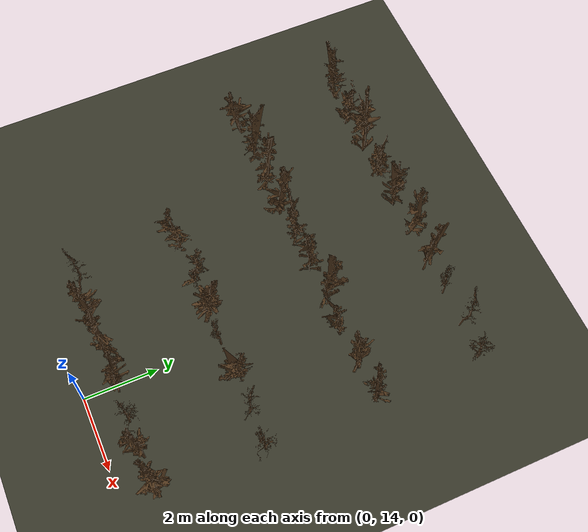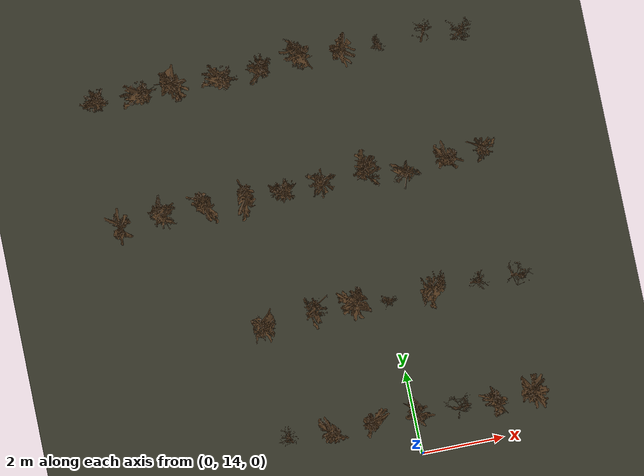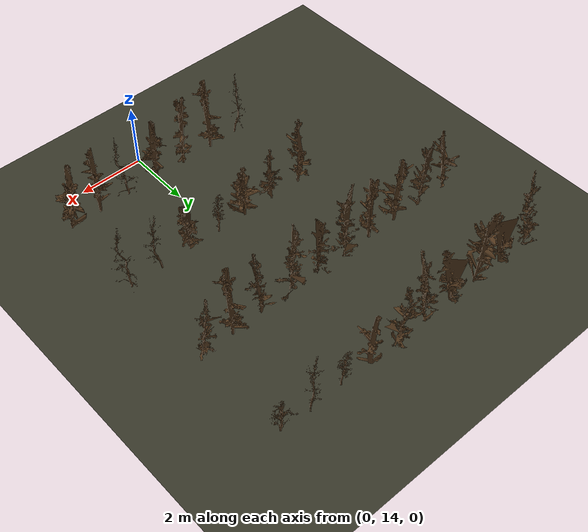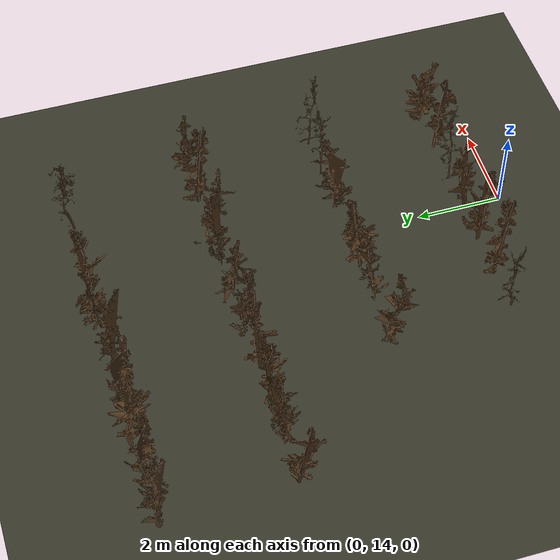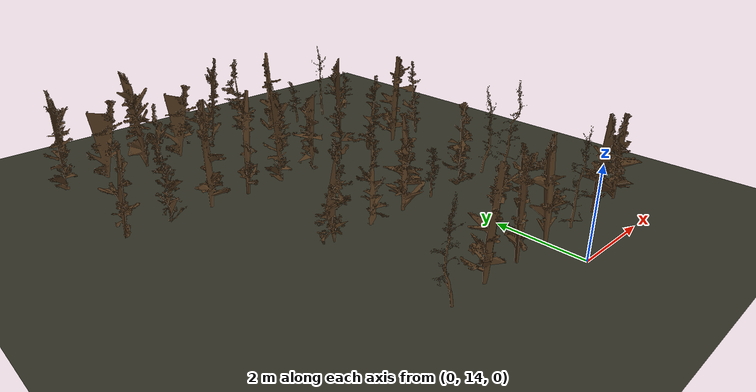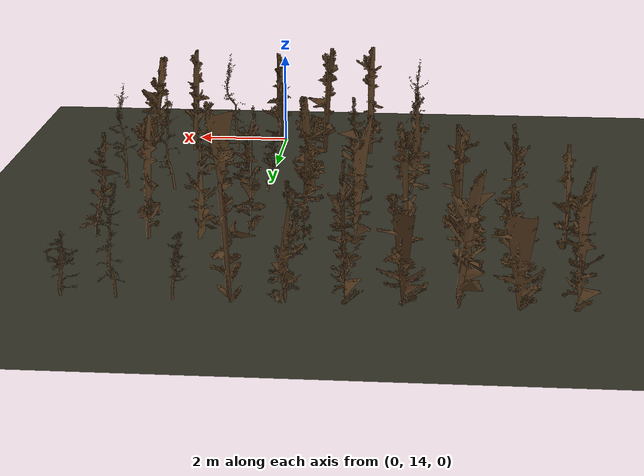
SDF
<sdf version="1.9">
 <world name="orchard_dormant_world">
  <model name="ground_plane">
   <static>true</static>
   <link name="link">
    <collision name="collision">
     <geometry><plane><normal>0 0 1</normal><size>500 500</size></plane></geometry>
    </collision>
    <visual name="visual">
     <geometry><plane><normal>0 0 1</normal><size>500 500</size></plane></geometry>
     <material><ambient>0.2 0.2 0.15 1</ambient><diffuse>0.2 0.2 0.15 1</diffuse></material>
    </visual>
   </link>
  </model>
  <model name="tree28">
   <static>true</static>
   <pose>3.000 23.830 -0.1 0 0 1.479</pose>
   <link name="link">
    <collision name="collision">
     <geometry>
      <mesh>
       <uri>file:///home/administrator/ros2/orchard_navigation_rl_ws/src/orchard_worlds/models/orchard_model/tree14_collision.stl</uri>
      </mesh>
     </geometry>
    </collision>
    <visual name="visual">
     <geometry>
      <mesh>
       <uri>file:///home/administrator/ros2/orchard_navigation_rl_ws/src/orchard_worlds/models/orchard_model/tree14.stl</uri>
      </mesh>
     </geometry>
     <material><ambient>0.3 0.2 0.1 1</ambient><diffuse>0.3 0.2 0.1 1</diffuse></material>
    </visual>
   </link>
  </model>
  <model name="tree29">
   <static>true</static>
   <pose>2.000 23.830 -0.1 0 0 5.065</pose>
   <link name="link">
    <collision name="collision">
     <geometry>
      <mesh>
       <uri>file:///home/administrator/ros2/orchard_navigation_rl_ws/src/orchard_worlds/models/orchard_model/tree16_collision.stl</uri>
      </mesh>
     </geometry>
    </collision>
    <visual name="visual">
     <geometry>
      <mesh>
       <uri>file:///home/administrator/ros2/orchard_navigation_rl_ws/src/orchard_worlds/models/orchard_model/tree16.stl</uri>
      </mesh>
     </geometry>
     <material><ambient>0.3 0.2 0.1 1</ambient><diffuse>0.3 0.2 0.1 1</diffuse></material>
    </visual>
   </link>
  </model>
  <model name="tree30">
   <static>true</static>
   <pose>1.000 23.830 -0.1 0 0 5.503</pose>
   <link name="link">
    <collision name="collision">
     <geometry>
      <mesh>
       <uri>file:///home/administrator/ros2/orchard_navigation_rl_ws/src/orchard_worlds/models/orchard_model/tree4_collision.stl</uri>
      </mesh>
     </geometry>
    </collision>
    <visual name="visual">
     <geometry>
      <mesh>
       <uri>file:///home/administrator/ros2/orchard_navigation_rl_ws/src/orchard_worlds/models/orchard_model/tree4.stl</uri>
      </mesh>
     </geometry>
     <material><ambient>0.3 0.2 0.1 1</ambient><diffuse>0.3 0.2 0.1 1</diffuse></material>
    </visual>
   </link>
  </model>
  <model name="tree31">
   <static>true</static>
   <pose>0.000 23.830 -0.1 0 0 3.590</pose>
   <link name="link">
    <collision name="collision">
     <geometry>
      <mesh>
       <uri>file:///home/administrator/ros2/orchard_navigation_rl_ws/src/orchard_worlds/models/orchard_model/tree13_collision.stl</uri>
      </mesh>
     </geometry>
    </collision>
    <visual name="visual">
     <geometry>
      <mesh>
       <uri>file:///home/administrator/ros2/orchard_navigation_rl_ws/src/orchard_worlds/models/orchard_model/tree13.stl</uri>
      </mesh>
     </geometry>
     <material><ambient>0.3 0.2 0.1 1</ambient><diffuse>0.3 0.2 0.1 1</diffuse></material>
    </visual>
   </link>
  </model>
  <model name="tree32">
   <static>true</static>
   <pose>-1.000 23.830 -0.1 0 0 4.396</pose>
   <link name="link">
    <collision name="collision">
     <geometry>
      <mesh>
       <uri>file:///home/administrator/ros2/orchard_navigation_rl_ws/src/orchard_worlds/models/orchard_model/tree10_collision.stl</uri>
      </mesh>
     </geometry>
    </collision>
    <visual name="visual">
     <geometry>
      <mesh>
       <uri>file:///home/administrator/ros2/orchard_navigation_rl_ws/src/orchard_worlds/models/orchard_model/tree10.stl</uri>
      </mesh>
     </geometry>
     <material><ambient>0.3 0.2 0.1 1</ambient><diffuse>0.3 0.2 0.1 1</diffuse></material>
    </visual>
   </link>
  </model>
  <model name="tree33">
   <static>true</static>
   <pose>-2.000 23.830 -0.1 0 0 0.554</pose>
   <link name="link">
    <collision name="collision">
     <geometry>
      <mesh>
       <uri>file:///home/administrator/ros2/orchard_navigation_rl_ws/src/orchard_worlds/models/orchard_model/tree5_collision.stl</uri>
      </mesh>
     </geometry>
    </collision>
    <visual name="visual">
     <geometry>
      <mesh>
       <uri>file:///home/administrator/ros2/orchard_navigation_rl_ws/src/orchard_worlds/models/orchard_model/tree5.stl</uri>
      </mesh>
     </geometry>
     <material><ambient>0.3 0.2 0.1 1</ambient><diffuse>0.3 0.2 0.1 1</diffuse></material>
    </visual>
   </link>
  </model>
  <model name="tree34">
   <static>true</static>
   <pose>-3.000 23.830 -0.1 0 0 1.792</pose>
   <link name="link">
    <collision name="collision">
     <geometry>
      <mesh>
       <uri>file:///home/administrator/ros2/orchard_navigation_rl_ws/src/orchard_worlds/models/orchard_model/tree11_collision.stl</uri>
      </mesh>
     </geometry>
    </collision>
    <visual name="visual">
     <geometry>
      <mesh>
       <uri>file:///home/administrator/ros2/orchard_navigation_rl_ws/src/orchard_worlds/models/orchard_model/tree11.stl</uri>
      </mesh>
     </geometry>
     <material><ambient>0.3 0.2 0.1 1</ambient><diffuse>0.3 0.2 0.1 1</diffuse></material>
    </visual>
   </link>
  </model>
  <model name="tree35">
   <static>true</static>
   <pose>-4.000 23.830 -0.1 0 0 5.510</pose>
   <link name="link">
    <collision name="collision">
     <geometry>
      <mesh>
       <uri>file:///home/administrator/ros2/orchard_navigation_rl_ws/src/orchard_worlds/models/orchard_model/tree7_collision.stl</uri>
      </mesh>
     </geometry>
    </collision>
    <visual name="visual">
     <geometry>
      <mesh>
       <uri>file:///home/administrator/ros2/orchard_navigation_rl_ws/src/orchard_worlds/models/orchard_model/tree7.stl</uri>
      </mesh>
     </geometry>
     <material><ambient>0.3 0.2 0.1 1</ambient><diffuse>0.3 0.2 0.1 1</diffuse></material>
    </visual>
   </link>
  </model>
  <model name="tree36">
   <static>true</static>
   <pose>-5.000 23.830 -0.1 0 0 2.146</pose>
   <link name="link">
    <collision name="collision">
     <geometry>
      <mesh>
       <uri>file:///home/administrator/ros2/orchard_navigation_rl_ws/src/orchard_worlds/models/orchard_model/tree11_collision.stl</uri>
      </mesh>
     </geometry>
    </collision>
    <visual name="visual">
     <geometry>
      <mesh>
       <uri>file:///home/administrator/ros2/orchard_navigation_rl_ws/src/orchard_worlds/models/orchard_model/tree11.stl</uri>
      </mesh>
     </geometry>
     <material><ambient>0.3 0.2 0.1 1</ambient><diffuse>0.3 0.2 0.1 1</diffuse></material>
    </visual>
   </link>
  </model>
  <model name="tree37">
   <static>true</static>
   <pose>-6.000 23.830 -0.1 0 0 6.051</pose>
   <link name="link">
    <collision name="collision">
     <geometry>
      <mesh>
       <uri>file:///home/administrator/ros2/orchard_navigation_rl_ws/src/orchard_worlds/models/orchard_model/tree5_collision.stl</uri>
      </mesh>
     </geometry>
    </collision>
    <visual name="visual">
     <geometry>
      <mesh>
       <uri>file:///home/administrator/ros2/orchard_navigation_rl_ws/src/orchard_worlds/models/orchard_model/tree5.stl</uri>
      </mesh>
     </geometry>
     <material><ambient>0.3 0.2 0.1 1</ambient><diffuse>0.3 0.2 0.1 1</diffuse></material>
    </visual>
   </link>
  </model>
  <model name="tree65">
   <static>true</static>
   <pose>3.000 20.800 -0.1 0 0 5.099</pose>
   <link name="link">
    <collision name="collision">
     <geometry>
      <mesh>
       <uri>file:///home/administrator/ros2/orchard_navigation_rl_ws/src/orchard_worlds/models/orchard_model/tree2_collision.stl</uri>
      </mesh>
     </geometry>
    </collision>
    <visual name="visual">
     <geometry>
      <mesh>
       <uri>file:///home/administrator/ros2/orchard_navigation_rl_ws/src/orchard_worlds/models/orchard_model/tree2.stl</uri>
      </mesh>
     </geometry>
     <material><ambient>0.3 0.2 0.1 1</ambient><diffuse>0.3 0.2 0.1 1</diffuse></material>
    </visual>
   </link>
  </model>
  <model name="tree66">
   <static>true</static>
   <pose>2.000 20.800 -0.1 0 0 0.554</pose>
   <link name="link">
    <collision name="collision">
     <geometry>
      <mesh>
       <uri>file:///home/administrator/ros2/orchard_navigation_rl_ws/src/orchard_worlds/models/orchard_model/tree6_collision.stl</uri>
      </mesh>
     </geometry>
    </collision>
    <visual name="visual">
     <geometry>
      <mesh>
       <uri>file:///home/administrator/ros2/orchard_navigation_rl_ws/src/orchard_worlds/models/orchard_model/tree6.stl</uri>
      </mesh>
     </geometry>
     <material><ambient>0.3 0.2 0.1 1</ambient><diffuse>0.3 0.2 0.1 1</diffuse></material>
    </visual>
   </link>
  </model>
  <model name="tree67">
   <static>true</static>
   <pose>1.000 20.800 -0.1 0 0 0.568</pose>
   <link name="link">
    <collision name="collision">
     <geometry>
      <mesh>
       <uri>file:///home/administrator/ros2/orchard_navigation_rl_ws/src/orchard_worlds/models/orchard_model/tree2_collision.stl</uri>
      </mesh>
     </geometry>
    </collision>
    <visual name="visual">
     <geometry>
      <mesh>
       <uri>file:///home/administrator/ros2/orchard_navigation_rl_ws/src/orchard_worlds/models/orchard_model/tree2.stl</uri>
      </mesh>
     </geometry>
     <material><ambient>0.3 0.2 0.1 1</ambient><diffuse>0.3 0.2 0.1 1</diffuse></material>
    </visual>
   </link>
  </model>
  <model name="tree68">
   <static>true</static>
   <pose>0.000 20.800 -0.1 0 0 3.835</pose>
   <link name="link">
    <collision name="collision">
     <geometry>
      <mesh>
       <uri>file:///home/administrator/ros2/orchard_navigation_rl_ws/src/orchard_worlds/models/orchard_model/tree3_collision.stl</uri>
      </mesh>
     </geometry>
    </collision>
    <visual name="visual">
     <geometry>
      <mesh>
       <uri>file:///home/administrator/ros2/orchard_navigation_rl_ws/src/orchard_worlds/models/orchard_model/tree3.stl</uri>
      </mesh>
     </geometry>
     <material><ambient>0.3 0.2 0.1 1</ambient><diffuse>0.3 0.2 0.1 1</diffuse></material>
    </visual>
   </link>
  </model>
  <model name="tree69">
   <static>true</static>
   <pose>-1.000 20.800 -0.1 0 0 5.362</pose>
   <link name="link">
    <collision name="collision">
     <geometry>
      <mesh>
       <uri>file:///home/administrator/ros2/orchard_navigation_rl_ws/src/orchard_worlds/models/orchard_model/tree1_collision.stl</uri>
      </mesh>
     </geometry>
    </collision>
    <visual name="visual">
     <geometry>
      <mesh>
       <uri>file:///home/administrator/ros2/orchard_navigation_rl_ws/src/orchard_worlds/models/orchard_model/tree1.stl</uri>
      </mesh>
     </geometry>
     <material><ambient>0.3 0.2 0.1 1</ambient><diffuse>0.3 0.2 0.1 1</diffuse></material>
    </visual>
   </link>
  </model>
  <model name="tree70">
   <static>true</static>
   <pose>-2.000 20.800 -0.1 0 0 5.466</pose>
   <link name="link">
    <collision name="collision">
     <geometry>
      <mesh>
       <uri>file:///home/administrator/ros2/orchard_navigation_rl_ws/src/orchard_worlds/models/orchard_model/tree5_collision.stl</uri>
      </mesh>
     </geometry>
    </collision>
    <visual name="visual">
     <geometry>
      <mesh>
       <uri>file:///home/administrator/ros2/orchard_navigation_rl_ws/src/orchard_worlds/models/orchard_model/tree5.stl</uri>
      </mesh>
     </geometry>
     <material><ambient>0.3 0.2 0.1 1</ambient><diffuse>0.3 0.2 0.1 1</diffuse></material>
    </visual>
   </link>
  </model>
  <model name="tree71">
   <static>true</static>
   <pose>-3.000 20.800 -0.1 0 0 2.984</pose>
   <link name="link">
    <collision name="collision">
     <geometry>
      <mesh>
       <uri>file:///home/administrator/ros2/orchard_navigation_rl_ws/src/orchard_worlds/models/orchard_model/tree6_collision.stl</uri>
      </mesh>
     </geometry>
    </collision>
    <visual name="visual">
     <geometry>
      <mesh>
       <uri>file:///home/administrator/ros2/orchard_navigation_rl_ws/src/orchard_worlds/models/orchard_model/tree6.stl</uri>
      </mesh>
     </geometry>
     <material><ambient>0.3 0.2 0.1 1</ambient><diffuse>0.3 0.2 0.1 1</diffuse></material>
    </visual>
   </link>
  </model>
  <model name="tree72">
   <static>true</static>
   <pose>-4.000 20.800 -0.1 0 0 3.839</pose>
   <link name="link">
    <collision name="collision">
     <geometry>
      <mesh>
       <uri>file:///home/administrator/ros2/orchard_navigation_rl_ws/src/orchard_worlds/models/orchard_model/tree6_collision.stl</uri>
      </mesh>
     </geometry>
    </collision>
    <visual name="visual">
     <geometry>
      <mesh>
       <uri>file:///home/administrator/ros2/orchard_navigation_rl_ws/src/orchard_worlds/models/orchard_model/tree6.stl</uri>
      </mesh>
     </geometry>
     <material><ambient>0.3 0.2 0.1 1</ambient><diffuse>0.3 0.2 0.1 1</diffuse></material>
    </visual>
   </link>
  </model>
  <model name="tree73">
   <static>true</static>
   <pose>-5.000 20.800 -0.1 0 0 3.483</pose>
   <link name="link">
    <collision name="collision">
     <geometry>
      <mesh>
       <uri>file:///home/administrator/ros2/orchard_navigation_rl_ws/src/orchard_worlds/models/orchard_model/tree5_collision.stl</uri>
      </mesh>
     </geometry>
    </collision>
    <visual name="visual">
     <geometry>
      <mesh>
       <uri>file:///home/administrator/ros2/orchard_navigation_rl_ws/src/orchard_worlds/models/orchard_model/tree5.stl</uri>
      </mesh>
     </geometry>
     <material><ambient>0.3 0.2 0.1 1</ambient><diffuse>0.3 0.2 0.1 1</diffuse></material>
    </visual>
   </link>
  </model>
  <model name="tree74">
   <static>true</static>
   <pose>-6.000 20.800 -0.1 0 0 0.524</pose>
   <link name="link">
    <collision name="collision">
     <geometry>
      <mesh>
       <uri>file:///home/administrator/ros2/orchard_navigation_rl_ws/src/orchard_worlds/models/orchard_model/tree8_collision.stl</uri>
      </mesh>
     </geometry>
    </collision>
    <visual name="visual">
     <geometry>
      <mesh>
       <uri>file:///home/administrator/ros2/orchard_navigation_rl_ws/src/orchard_worlds/models/orchard_model/tree8.stl</uri>
      </mesh>
     </geometry>
     <material><ambient>0.3 0.2 0.1 1</ambient><diffuse>0.3 0.2 0.1 1</diffuse></material>
    </visual>
   </link>
  </model>
  <model name="tree102">
   <static>true</static>
   <pose>3.000 17.800 -0.1 0 0 1.050</pose>
   <link name="link">
    <collision name="collision">
     <geometry>
      <mesh>
       <uri>file:///home/administrator/ros2/orchard_navigation_rl_ws/src/orchard_worlds/models/orchard_model/tree9_collision.stl</uri>
      </mesh>
     </geometry>
    </collision>
    <visual name="visual">
     <geometry>
      <mesh>
       <uri>file:///home/administrator/ros2/orchard_navigation_rl_ws/src/orchard_worlds/models/orchard_model/tree9.stl</uri>
      </mesh>
     </geometry>
     <material><ambient>0.3 0.2 0.1 1</ambient><diffuse>0.3 0.2 0.1 1</diffuse></material>
    </visual>
   </link>
  </model>
  <model name="tree103">
   <static>true</static>
   <pose>2.000 17.800 -0.1 0 0 3.516</pose>
   <link name="link">
    <collision name="collision">
     <geometry>
      <mesh>
       <uri>file:///home/administrator/ros2/orchard_navigation_rl_ws/src/orchard_worlds/models/orchard_model/tree16_collision.stl</uri>
      </mesh>
     </geometry>
    </collision>
    <visual name="visual">
     <geometry>
      <mesh>
       <uri>file:///home/administrator/ros2/orchard_navigation_rl_ws/src/orchard_worlds/models/orchard_model/tree16.stl</uri>
      </mesh>
     </geometry>
     <material><ambient>0.3 0.2 0.1 1</ambient><diffuse>0.3 0.2 0.1 1</diffuse></material>
    </visual>
   </link>
  </model>
  <model name="tree104">
   <static>true</static>
   <pose>1.000 17.800 -0.1 0 0 3.187</pose>
   <link name="link">
    <collision name="collision">
     <geometry>
      <mesh>
       <uri>file:///home/administrator/ros2/orchard_navigation_rl_ws/src/orchard_worlds/models/orchard_model/tree11_collision.stl</uri>
      </mesh>
     </geometry>
    </collision>
    <visual name="visual">
     <geometry>
      <mesh>
       <uri>file:///home/administrator/ros2/orchard_navigation_rl_ws/src/orchard_worlds/models/orchard_model/tree11.stl</uri>
      </mesh>
     </geometry>
     <material><ambient>0.3 0.2 0.1 1</ambient><diffuse>0.3 0.2 0.1 1</diffuse></material>
    </visual>
   </link>
  </model>
  <model name="tree105">
   <static>true</static>
   <pose>0.000 17.800 -0.1 0 0 0.203</pose>
   <link name="link">
    <collision name="collision">
     <geometry>
      <mesh>
       <uri>file:///home/administrator/ros2/orchard_navigation_rl_ws/src/orchard_worlds/models/orchard_model/tree4_collision.stl</uri>
      </mesh>
     </geometry>
    </collision>
    <visual name="visual">
     <geometry>
      <mesh>
       <uri>file:///home/administrator/ros2/orchard_navigation_rl_ws/src/orchard_worlds/models/orchard_model/tree4.stl</uri>
      </mesh>
     </geometry>
     <material><ambient>0.3 0.2 0.1 1</ambient><diffuse>0.3 0.2 0.1 1</diffuse></material>
    </visual>
   </link>
  </model>
  <model name="tree106">
   <static>true</static>
   <pose>-1.000 17.800 -0.1 0 0 3.506</pose>
   <link name="link">
    <collision name="collision">
     <geometry>
      <mesh>
       <uri>file:///home/administrator/ros2/orchard_navigation_rl_ws/src/orchard_worlds/models/orchard_model/tree12_collision.stl</uri>
      </mesh>
     </geometry>
    </collision>
    <visual name="visual">
     <geometry>
      <mesh>
       <uri>file:///home/administrator/ros2/orchard_navigation_rl_ws/src/orchard_worlds/models/orchard_model/tree12.stl</uri>
      </mesh>
     </geometry>
     <material><ambient>0.3 0.2 0.1 1</ambient><diffuse>0.3 0.2 0.1 1</diffuse></material>
    </visual>
   </link>
  </model>
  <model name="tree107">
   <static>true</static>
   <pose>-2.000 17.800 -0.1 0 0 2.979</pose>
   <link name="link">
    <collision name="collision">
     <geometry>
      <mesh>
       <uri>file:///home/administrator/ros2/orchard_navigation_rl_ws/src/orchard_worlds/models/orchard_model/tree2_collision.stl</uri>
      </mesh>
     </geometry>
    </collision>
    <visual name="visual">
     <geometry>
      <mesh>
       <uri>file:///home/administrator/ros2/orchard_navigation_rl_ws/src/orchard_worlds/models/orchard_model/tree2.stl</uri>
      </mesh>
     </geometry>
     <material><ambient>0.3 0.2 0.1 1</ambient><diffuse>0.3 0.2 0.1 1</diffuse></material>
    </visual>
   </link>
  </model>
  <model name="tree108">
   <static>true</static>
   <pose>-3.000 17.800 -0.1 0 0 0.058</pose>
   <link name="link">
    <collision name="collision">
     <geometry>
      <mesh>
       <uri>file:///home/administrator/ros2/orchard_navigation_rl_ws/src/orchard_worlds/models/orchard_model/tree10_collision.stl</uri>
      </mesh>
     </geometry>
    </collision>
    <visual name="visual">
     <geometry>
      <mesh>
       <uri>file:///home/administrator/ros2/orchard_navigation_rl_ws/src/orchard_worlds/models/orchard_model/tree10.stl</uri>
      </mesh>
     </geometry>
     <material><ambient>0.3 0.2 0.1 1</ambient><diffuse>0.3 0.2 0.1 1</diffuse></material>
    </visual>
   </link>
  </model>
  <model name="tree136">
   <static>true</static>
   <pose>3.000 14.900 -0.1 0 0 6.142</pose>
   <link name="link">
    <collision name="collision">
     <geometry>
      <mesh>
       <uri>file:///home/administrator/ros2/orchard_navigation_rl_ws/src/orchard_worlds/models/orchard_model/tree12_collision.stl</uri>
      </mesh>
     </geometry>
    </collision>
    <visual name="visual">
     <geometry>
      <mesh>
       <uri>file:///home/administrator/ros2/orchard_navigation_rl_ws/src/orchard_worlds/models/orchard_model/tree12.stl</uri>
      </mesh>
     </geometry>
     <material><ambient>0.3 0.2 0.1 1</ambient><diffuse>0.3 0.2 0.1 1</diffuse></material>
    </visual>
   </link>
  </model>
  <model name="tree137">
   <static>true</static>
   <pose>2.000 14.900 -0.1 0 0 0.826</pose>
   <link name="link">
    <collision name="collision">
     <geometry>
      <mesh>
       <uri>file:///home/administrator/ros2/orchard_navigation_rl_ws/src/orchard_worlds/models/orchard_model/tree15_collision.stl</uri>
      </mesh>
     </geometry>
    </collision>
    <visual name="visual">
     <geometry>
      <mesh>
       <uri>file:///home/administrator/ros2/orchard_navigation_rl_ws/src/orchard_worlds/models/orchard_model/tree15.stl</uri>
      </mesh>
     </geometry>
     <material><ambient>0.3 0.2 0.1 1</ambient><diffuse>0.3 0.2 0.1 1</diffuse></material>
    </visual>
   </link>
  </model>
  <model name="tree138">
   <static>true</static>
   <pose>1.000 14.900 -0.1 0 0 1.900</pose>
   <link name="link">
    <collision name="collision">
     <geometry>
      <mesh>
       <uri>file:///home/administrator/ros2/orchard_navigation_rl_ws/src/orchard_worlds/models/orchard_model/tree9_collision.stl</uri>
      </mesh>
     </geometry>
    </collision>
    <visual name="visual">
     <geometry>
      <mesh>
       <uri>file:///home/administrator/ros2/orchard_navigation_rl_ws/src/orchard_worlds/models/orchard_model/tree9.stl</uri>
      </mesh>
     </geometry>
     <material><ambient>0.3 0.2 0.1 1</ambient><diffuse>0.3 0.2 0.1 1</diffuse></material>
    </visual>
   </link>
  </model>
  <model name="tree139">
   <static>true</static>
   <pose>0.000 14.900 -0.1 0 0 4.196</pose>
   <link name="link">
    <collision name="collision">
     <geometry>
      <mesh>
       <uri>file:///home/administrator/ros2/orchard_navigation_rl_ws/src/orchard_worlds/models/orchard_model/tree15_collision.stl</uri>
      </mesh>
     </geometry>
    </collision>
    <visual name="visual">
     <geometry>
      <mesh>
       <uri>file:///home/administrator/ros2/orchard_navigation_rl_ws/src/orchard_worlds/models/orchard_model/tree15.stl</uri>
      </mesh>
     </geometry>
     <material><ambient>0.3 0.2 0.1 1</ambient><diffuse>0.3 0.2 0.1 1</diffuse></material>
    </visual>
   </link>
  </model>
  <model name="tree140">
   <static>true</static>
   <pose>-1.000 14.900 -0.1 0 0 5.438</pose>
   <link name="link">
    <collision name="collision">
     <geometry>
      <mesh>
       <uri>file:///home/administrator/ros2/orchard_navigation_rl_ws/src/orchard_worlds/models/orchard_model/tree6_collision.stl</uri>
      </mesh>
     </geometry>
    </collision>
    <visual name="visual">
     <geometry>
      <mesh>
       <uri>file:///home/administrator/ros2/orchard_navigation_rl_ws/src/orchard_worlds/models/orchard_model/tree6.stl</uri>
      </mesh>
     </geometry>
     <material><ambient>0.3 0.2 0.1 1</ambient><diffuse>0.3 0.2 0.1 1</diffuse></material>
    </visual>
   </link>
  </model>
  <model name="tree141">
   <static>true</static>
   <pose>-2.000 14.900 -0.1 0 0 0.658</pose>
   <link name="link">
    <collision name="collision">
     <geometry>
      <mesh>
       <uri>file:///home/administrator/ros2/orchard_navigation_rl_ws/src/orchard_worlds/models/orchard_model/tree6_collision.stl</uri>
      </mesh>
     </geometry>
    </collision>
    <visual name="visual">
     <geometry>
      <mesh>
       <uri>file:///home/administrator/ros2/orchard_navigation_rl_ws/src/orchard_worlds/models/orchard_model/tree6.stl</uri>
      </mesh>
     </geometry>
     <material><ambient>0.3 0.2 0.1 1</ambient><diffuse>0.3 0.2 0.1 1</diffuse></material>
    </visual>
   </link>
  </model>
  <model name="tree142">
   <static>true</static>
   <pose>-3.000 14.900 -0.1 0 0 5.976</pose>
   <link name="link">
    <collision name="collision">
     <geometry>
      <mesh>
       <uri>file:///home/administrator/ros2/orchard_navigation_rl_ws/src/orchard_worlds/models/orchard_model/tree16_collision.stl</uri>
      </mesh>
     </geometry>
    </collision>
    <visual name="visual">
     <geometry>
      <mesh>
       <uri>file:///home/administrator/ros2/orchard_navigation_rl_ws/src/orchard_worlds/models/orchard_model/tree16.stl</uri>
      </mesh>
     </geometry>
     <material><ambient>0.3 0.2 0.1 1</ambient><diffuse>0.3 0.2 0.1 1</diffuse></material>
    </visual>
   </link>
  </model>
 </world>
</sdf>
